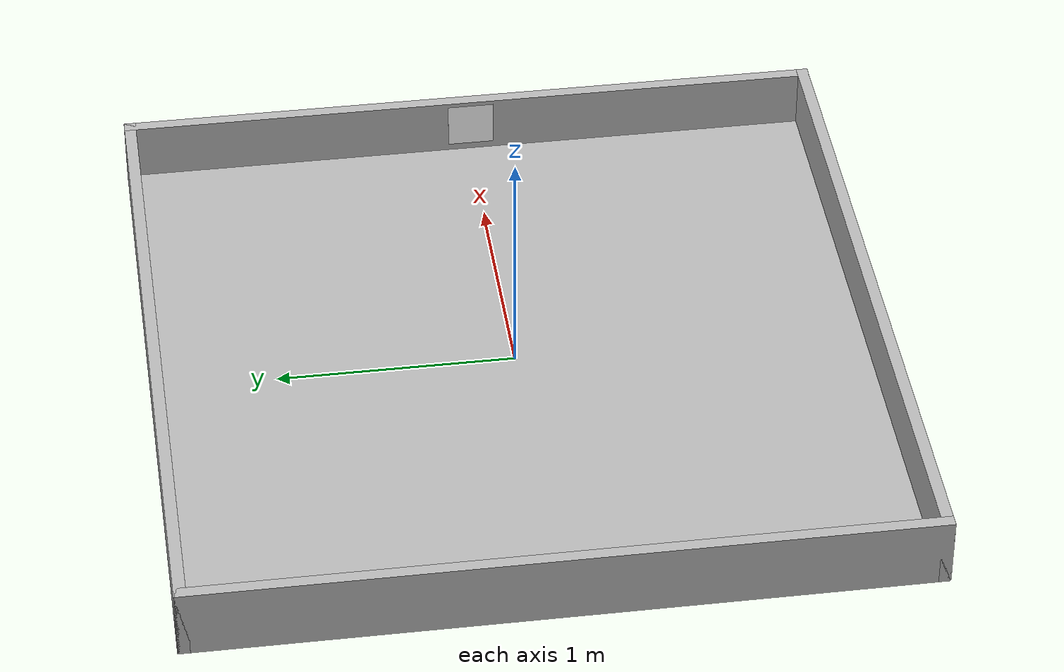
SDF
<?xml version="1.0" ?>

<sdf version="1.5">
	<world name="default">
		<plugin name="gazebo_ros_state" filename="libgazebo_ros_state.so">
			<ros>
				<namespace>/demo</namespace>

				<argument>link_states:=link_states_demo</argument>
			</ros>

			<update_rate>1.0</update_rate>
		</plugin>

		<!-- A global light source -->
		<include>
			<uri>model://sun</uri>
		</include>

		<!-- simulation table -->
		<include>
			<uri>model://simulation_table</uri>
		</include>

		<include>
			<name>Apriltag36_11_00000</name>
			<pose>1.45 0.0 0.15 1.5708 0 1.5708</pose>
			<static>true</static>
			<uri>model://Apriltag36_11_00000</uri>
		</include>
	</world>

</sdf>

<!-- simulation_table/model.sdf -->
<sdf version="1.5">
  <model name="simulation_table">
    <static>true</static>
    <link name="floor">
      <collision name="collision">
        <geometry>
          <plane>
            <normal>0 0 1</normal>
            <size>3.0 3.0</size>
          </plane>
        </geometry>
        <surface>
          <friction>
            <ode>
              <mu>100</mu>
              <mu2>50</mu2>
            </ode>
          </friction>
        </surface>
      </collision>
      <visual name="visual">
        <cast_shadows>false</cast_shadows>
        <geometry>
          <plane>
            <normal>0 0 1</normal>
            <size>3.0 3.0</size>
          </plane>
        </geometry>
        <material>
          <script>
            <uri>model://simulation_table/materials/scripts/</uri>
            <uri>model://simulation_table/materials/textures/</uri>
            <name>SimulationTable/Background</name>
          </script>
        </material>
      </visual>
    </link>

    <link name="side_1">
      <pose relative_to="floor">0.0 1.5 0.1 1.57079632679 0 0</pose>
      <collision name="collision">
        <geometry>
          <box>
            <size>3.05 0.3 0.05</size>
          </box>
        </geometry>
        <surface>
          <friction>
            <ode>
              <mu>100</mu>
              <mu2>50</mu2>
            </ode>
          </friction>
        </surface>
      </collision>
      <visual name="visual">
        <cast_shadows>false</cast_shadows>
        <geometry>
          <box>
            <size>3.05 0.3 0.05</size>
          </box>
        </geometry>
      </visual>
    </link>
    <link name="side_2">
      <pose relative_to="floor">0.0 -1.5 0.1 1.57079632679 0 0</pose>
      <collision name="collision">
        <geometry>
          <box>
            <size>3.05 0.3 0.05</size>
          </box>
        </geometry>
        <surface>
          <friction>
            <ode>
              <mu>100</mu>
              <mu2>50</mu2>
            </ode>
          </friction>
        </surface>
      </collision>
      <visual name="visual">
        <cast_shadows>false</cast_shadows>
        <geometry>
          <box>
            <size>3.05 0.3 0.05</size>
          </box>
        </geometry>
      </visual>
    </link>
    <link name="side_3">
      <pose relative_to="floor">1.5 0.0 0.1 1.57079632679 0 1.57079632679</pose>
      <collision name="collision">
        <geometry>
          <box>
            <size>3.05 0.3 0.05</size>
          </box>
        </geometry>
        <surface>
          <friction>
            <ode>
              <mu>100</mu>
              <mu2>50</mu2>
            </ode>
          </friction>
        </surface>
      </collision>
      <visual name="visual">
        <cast_shadows>false</cast_shadows>
        <geometry>
          <box>
            <size>3.05 0.3 0.05</size>
          </box>
        </geometry>
      </visual>
    </link>
    <link name="side_4">
      <pose relative_to="floor">-1.5 0.0 0.1 1.57079632679 0 1.57079632679</pose>
      <collision name="collision">
        <geometry>
          <box>
            <size>3.05 0.3 0.05</size>
          </box>
        </geometry>
        <surface>
          <friction>
            <ode>
              <mu>100</mu>
              <mu2>50</mu2>
            </ode>
          </friction>
        </surface>
      </collision>
      <visual name="visual">
        <cast_shadows>false</cast_shadows>
        <geometry>
          <box>
            <size>3.05 0.3 0.05</size>
          </box>
        </geometry>
      </visual>
    </link>
  </model>
</sdf>

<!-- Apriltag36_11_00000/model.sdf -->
<sdf version='1.6'>
  <model name='Apriltag36_11_00000'>
    <static>true</static>
    <link name="link">
      <visual name="visual">
        <geometry>
          <box>
            <size>0.2 0.2 0.001</size>
          </box>
        </geometry>
        <material>
          <script>
            <!-- point to your model's materials directories -->
            <uri>model://Apriltag36_11_00000/materials/scripts</uri>
            <uri>model://Apriltag36_11_00000/materials/textures</uri>
            <!-- material name defined in the .material file below -->
            <name>Apriltag36_11_00000</name>
          </script>
          <!-- keep colors white so the texture isn't tinted -->
          <ambient>1 1 1 1</ambient>
          <diffuse>1 1 1 1</diffuse>
          <specular>0 0 0 1</specular>
        </material>
        <cast_shadows>false</cast_shadows>
      </visual>

      <collision name="collision">
        <geometry>
          <box>
            <size>0.2 0.2 0.001</size>
          </box>
        </geometry>
      </collision>
    </link>
  </model>
</sdf>
